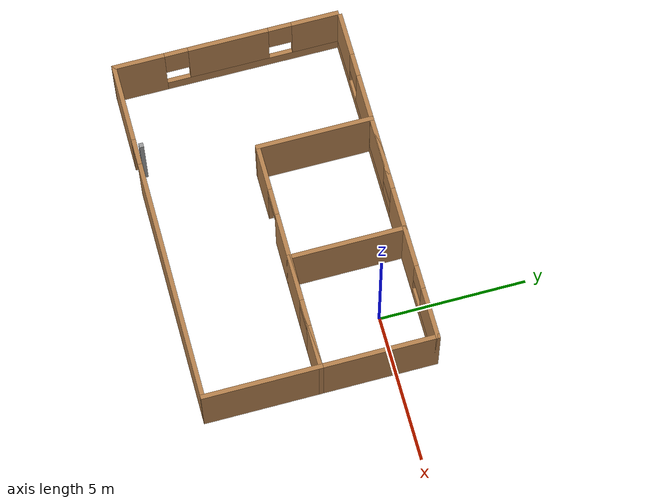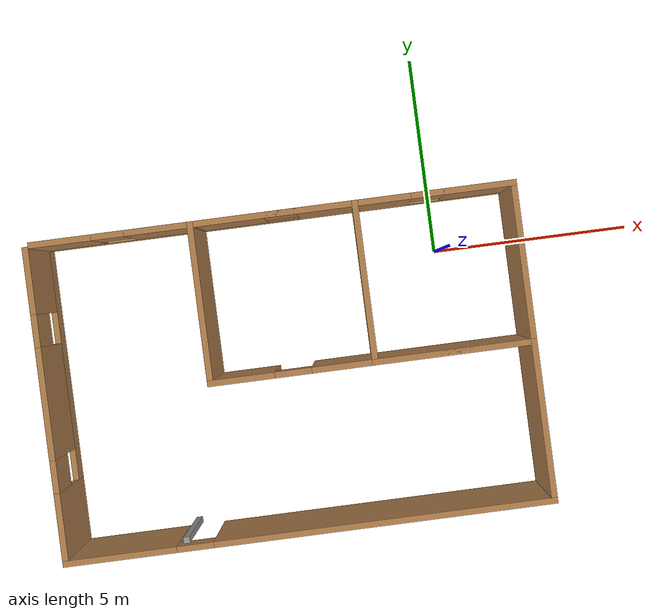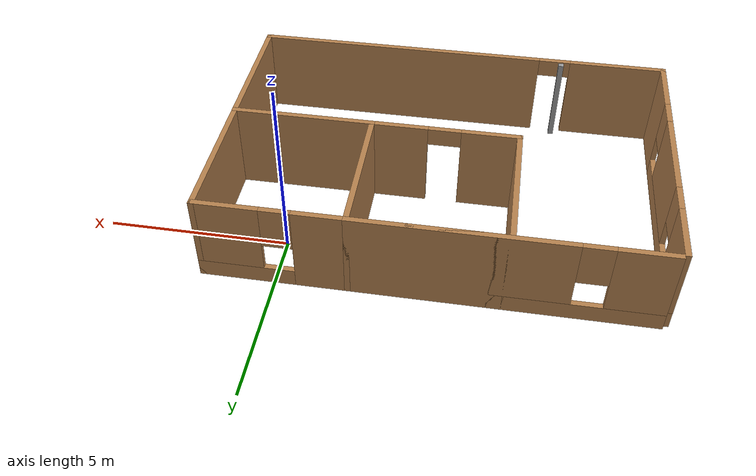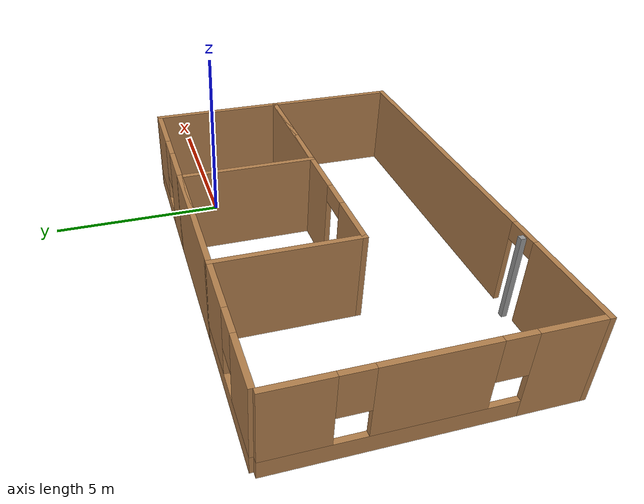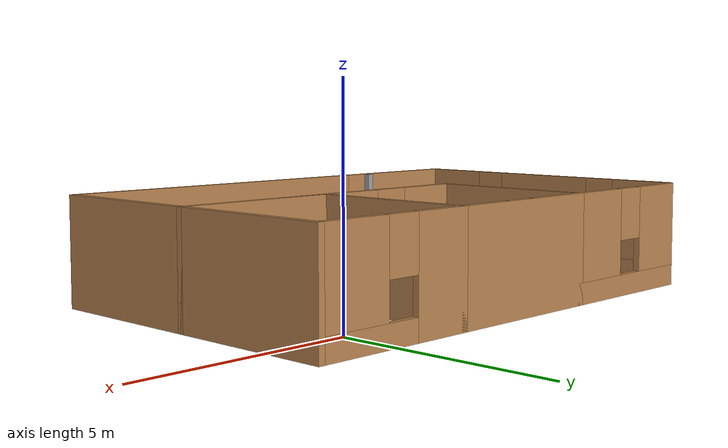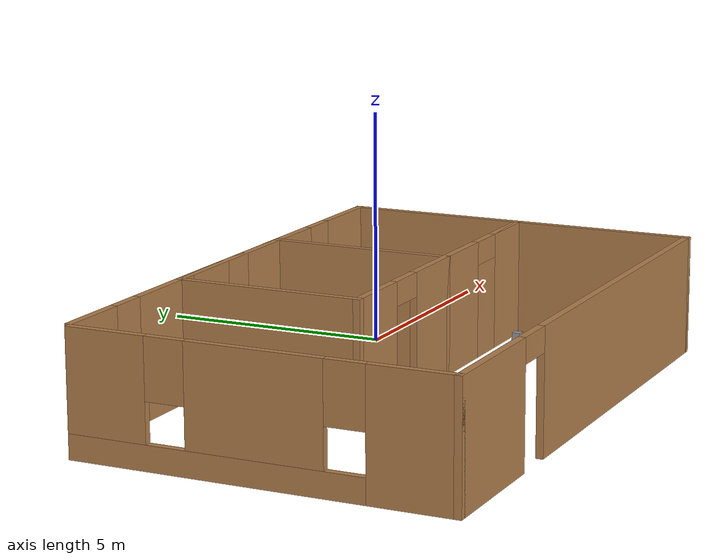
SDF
<?xml version='1.0'?>
<sdf version='1.6'>
  <model name='model'>
    <pose frame=''>-3.99777 -2.49916 0 0 -0 0</pose>
    <link name='Wall_11'>
      <pose frame=''>0 -3.85 0 0 -0 0</pose>
      <visual name='Wall_11_Visual_0'>
        <pose frame=''>-4.61809 0 1.25 0 -0 0</pose>
        <geometry>
          <box>
            <size>2.76382 0.15 2.5</size>
          </box>
        </geometry>
        <material>
          <script>
            <uri>file://media/materials/scripts/gazebo.material</uri>
            <name>Gazebo/Wood</name>
          </script>
          <ambient>1 1 1 1</ambient>
        </material>
        <meta>
          <layer>0</layer>
        </meta>
      </visual>
      <collision name='Wall_11_Collision_0'>
        <geometry>
          <box>
            <size>2.76382 0.15 2.5</size>
          </box>
        </geometry>
        <pose frame=''>-4.61809 0 1.25 0 -0 0</pose>
      </collision>
      <visual name='Wall_11_Visual_1'>
        <pose frame=''>1.83191 0 1.25 0 -0 0</pose>
        <geometry>
          <box>
            <size>8.33618 0.15 2.5</size>
          </box>
        </geometry>
        <material>
          <script>
            <uri>file://media/materials/scripts/gazebo.material</uri>
            <name>Gazebo/Wood</name>
          </script>
          <ambient>1 1 1 1</ambient>
        </material>
        <meta>
          <layer>0</layer>
        </meta>
      </visual>
      <collision name='Wall_11_Collision_1'>
        <geometry>
          <box>
            <size>8.33618 0.15 2.5</size>
          </box>
        </geometry>
        <pose frame=''>1.83191 0 1.25 0 -0 0</pose>
      </collision>
      <visual name='Wall_11_Visual_2'>
        <pose frame=''>-2.78618 0 2.25 0 -0 0</pose>
        <geometry>
          <box>
            <size>0.9 0.15 0.5</size>
          </box>
        </geometry>
        <material>
          <script>
            <uri>file://media/materials/scripts/gazebo.material</uri>
            <name>Gazebo/Wood</name>
          </script>
          <ambient>1 1 1 1</ambient>
        </material>
        <meta>
          <layer>0</layer>
        </meta>
      </visual>
      <collision name='Wall_11_Collision_2'>
        <geometry>
          <box>
            <size>0.9 0.15 0.5</size>
          </box>
        </geometry>
        <pose frame=''>-2.78618 0 2.25 0 -0 0</pose>
      </collision>
    </link>
    <link name='Wall_12'>
      <collision name='Wall_12_Collision'>
        <geometry>
          <box>
            <size>4 0.15 2.5</size>
          </box>
        </geometry>
        <pose frame=''>0 0 1.25 0 -0 0</pose>
      </collision>
      <visual name='Wall_12_Visual'>
        <pose frame=''>0 0 1.25 0 -0 0</pose>
        <geometry>
          <box>
            <size>4 0.15 2.5</size>
          </box>
        </geometry>
        <material>
          <script>
            <uri>file://media/materials/scripts/gazebo.material</uri>
            <name>Gazebo/Wood</name>
          </script>
          <ambient>1 1 1 1</ambient>
        </material>
        <meta>
          <layer>0</layer>
        </meta>
      </visual>
      <pose frame=''>5.925 -1.925 0 0 -0 1.5708</pose>
    </link>
    <link name='Wall_13'>
      <collision name='Wall_13_Collision'>
        <geometry>
          <box>
            <size>4 0.15 2.5</size>
          </box>
        </geometry>
        <pose frame=''>0 0 1.25 0 -0 0</pose>
      </collision>
      <visual name='Wall_13_Visual'>
        <pose frame=''>0 0 1.25 0 -0 0</pose>
        <geometry>
          <box>
            <size>4 0.15 2.5</size>
          </box>
        </geometry>
        <material>
          <script>
            <uri>file://media/materials/scripts/gazebo.material</uri>
            <name>Gazebo/Wood</name>
          </script>
          <ambient>1 1 1 1</ambient>
        </material>
        <meta>
          <layer>0</layer>
        </meta>
      </visual>
      <pose frame=''>4 0 0 0 -0 3.14159</pose>
    </link>
    <link name='Wall_14'>
      <collision name='Wall_14_Collision'>
        <geometry>
          <box>
            <size>4 0.15 2.5</size>
          </box>
        </geometry>
        <pose frame=''>0 0 1.25 0 -0 0</pose>
      </collision>
      <visual name='Wall_14_Visual'>
        <pose frame=''>0 0 1.25 0 -0 0</pose>
        <geometry>
          <box>
            <size>4 0.15 2.5</size>
          </box>
        </geometry>
        <material>
          <script>
            <uri>file://media/materials/scripts/gazebo.material</uri>
            <name>Gazebo/Wood</name>
          </script>
          <ambient>1 1 1 1</ambient>
        </material>
        <meta>
          <layer>0</layer>
        </meta>
      </visual>
      <pose frame=''>2.075 1.925 0 0 -0 1.5708</pose>
    </link>
    <link name='Wall_15'>
      <pose frame=''>4 3.85 0 0 -0 0</pose>
      <visual name='Wall_15_Visual_0'>
        <pose frame=''>-1.28136 0 1.25 0 -0 0</pose>
        <geometry>
          <box>
            <size>1.43727 0.15 2.5</size>
          </box>
        </geometry>
        <material>
          <script>
            <uri>file://media/materials/scripts/gazebo.material</uri>
            <name>Gazebo/Wood</name>
          </script>
          <ambient>1 1 1 1</ambient>
        </material>
        <meta>
          <layer>0</layer>
        </meta>
      </visual>
      <collision name='Wall_15_Collision_0'>
        <geometry>
          <box>
            <size>1.43727 0.15 2.5</size>
          </box>
        </geometry>
        <pose frame=''>-1.28136 0 1.25 0 -0 0</pose>
      </collision>
      <visual name='Wall_15_Visual_1'>
        <pose frame=''>0.718636 0 0.25 0 -0 0</pose>
        <geometry>
          <box>
            <size>2.56273 0.15 0.5</size>
          </box>
        </geometry>
        <material>
          <script>
            <uri>file://media/materials/scripts/gazebo.material</uri>
            <name>Gazebo/Wood</name>
          </script>
          <ambient>1 1 1 1</ambient>
        </material>
        <meta>
          <layer>0</layer>
        </meta>
      </visual>
      <collision name='Wall_15_Collision_1'>
        <geometry>
          <box>
            <size>2.56273 0.15 0.5</size>
          </box>
        </geometry>
        <pose frame=''>0.718636 0 0.25 0 -0 0</pose>
      </collision>
      <visual name='Wall_15_Visual_2'>
        <pose frame=''>1.11864 0 1.5 0 -0 0</pose>
        <geometry>
          <box>
            <size>1.76273 0.15 2</size>
          </box>
        </geometry>
        <material>
          <script>
            <uri>file://media/materials/scripts/gazebo.material</uri>
            <name>Gazebo/Wood</name>
          </script>
          <ambient>1 1 1 1</ambient>
        </material>
        <meta>
          <layer>0</layer>
        </meta>
      </visual>
      <collision name='Wall_15_Collision_2'>
        <geometry>
          <box>
            <size>1.76273 0.15 2</size>
          </box>
        </geometry>
        <pose frame=''>1.11864 0 1.5 0 -0 0</pose>
      </collision>
      <visual name='Wall_15_Visual_3'>
        <pose frame=''>-0.162727 0 1.9 0 -0 0</pose>
        <geometry>
          <box>
            <size>0.8 0.15 1.2</size>
          </box>
        </geometry>
        <material>
          <script>
            <uri>file://media/materials/scripts/gazebo.material</uri>
            <name>Gazebo/Wood</name>
          </script>
          <ambient>1 1 1 1</ambient>
        </material>
        <meta>
          <layer>0</layer>
        </meta>
      </visual>
      <collision name='Wall_15_Collision_3'>
        <geometry>
          <box>
            <size>0.8 0.15 1.2</size>
          </box>
        </geometry>
        <pose frame=''>-0.162727 0 1.9 0 -0 0</pose>
      </collision>
    </link>
    <link name='Wall_16'>
      <collision name='Wall_16_Collision'>
        <geometry>
          <box>
            <size>4 0.15 2.5</size>
          </box>
        </geometry>
        <pose frame=''>0 0 1.25 0 -0 0</pose>
      </collision>
      <visual name='Wall_16_Visual'>
        <pose frame=''>0 0 1.25 0 -0 0</pose>
        <geometry>
          <box>
            <size>4 0.15 2.5</size>
          </box>
        </geometry>
        <material>
          <script>
            <uri>file://media/materials/scripts/gazebo.material</uri>
            <name>Gazebo/Wood</name>
          </script>
          <ambient>1 1 1 1</ambient>
        </material>
        <meta>
          <layer>0</layer>
        </meta>
      </visual>
      <pose frame=''>5.925 1.925 0 0 0 -1.5708</pose>
    </link>
    <link name='Wall_17'>
      <pose frame=''>2 0 0 0 -0 3.14159</pose>
      <visual name='Wall_17_Visual_0'>
        <pose frame=''>-3.25004 0 1.25 0 -0 0</pose>
        <geometry>
          <box>
            <size>1.49992 0.15 2.5</size>
          </box>
        </geometry>
        <material>
          <script>
            <uri>file://media/materials/scripts/gazebo.material</uri>
            <name>Gazebo/Wood</name>
          </script>
          <ambient>1 1 1 1</ambient>
        </material>
        <meta>
          <layer>0</layer>
        </meta>
      </visual>
      <collision name='Wall_17_Collision_0'>
        <geometry>
          <box>
            <size>1.49992 0.15 2.5</size>
          </box>
        </geometry>
        <pose frame=''>-3.25004 0 1.25 0 -0 0</pose>
      </collision>
      <visual name='Wall_17_Visual_1'>
        <pose frame=''>-0.06836 0 1.25 0 -0 0</pose>
        <geometry>
          <box>
            <size>3.06343 0.15 2.5</size>
          </box>
        </geometry>
        <material>
          <script>
            <uri>file://media/materials/scripts/gazebo.material</uri>
            <name>Gazebo/Wood</name>
          </script>
          <ambient>1 1 1 1</ambient>
        </material>
        <meta>
          <layer>0</layer>
        </meta>
      </visual>
      <collision name='Wall_17_Collision_1'>
        <geometry>
          <box>
            <size>3.06343 0.15 2.5</size>
          </box>
        </geometry>
        <pose frame=''>-0.06836 0 1.25 0 -0 0</pose>
      </collision>
      <visual name='Wall_17_Visual_2'>
        <pose frame=''>3.18168 0 1.25 0 -0 0</pose>
        <geometry>
          <box>
            <size>1.63664 0.15 2.5</size>
          </box>
        </geometry>
        <material>
          <script>
            <uri>file://media/materials/scripts/gazebo.material</uri>
            <name>Gazebo/Wood</name>
          </script>
          <ambient>1 1 1 1</ambient>
        </material>
        <meta>
          <layer>0</layer>
        </meta>
      </visual>
      <collision name='Wall_17_Collision_2'>
        <geometry>
          <box>
            <size>1.63664 0.15 2.5</size>
          </box>
        </geometry>
        <pose frame=''>3.18168 0 1.25 0 -0 0</pose>
      </collision>
      <visual name='Wall_17_Visual_3'>
        <pose frame=''>-2.05008 0 2.25 0 -0 0</pose>
        <geometry>
          <box>
            <size>0.9 0.15 0.5</size>
          </box>
        </geometry>
        <material>
          <script>
            <uri>file://media/materials/scripts/gazebo.material</uri>
            <name>Gazebo/Wood</name>
          </script>
          <ambient>1 1 1 1</ambient>
        </material>
        <meta>
          <layer>0</layer>
        </meta>
      </visual>
      <collision name='Wall_17_Collision_3'>
        <geometry>
          <box>
            <size>0.9 0.15 0.5</size>
          </box>
        </geometry>
        <pose frame=''>-2.05008 0 2.25 0 -0 0</pose>
      </collision>
      <visual name='Wall_17_Visual_4'>
        <pose frame=''>1.91335 0 2.25 0 -0 0</pose>
        <geometry>
          <box>
            <size>0.9 0.15 0.5</size>
          </box>
        </geometry>
        <material>
          <script>
            <uri>file://media/materials/scripts/gazebo.material</uri>
            <name>Gazebo/Wood</name>
          </script>
          <ambient>1 1 1 1</ambient>
        </material>
        <meta>
          <layer>0</layer>
        </meta>
      </visual>
      <collision name='Wall_17_Collision_4'>
        <geometry>
          <box>
            <size>0.9 0.15 0.5</size>
          </box>
        </geometry>
        <pose frame=''>1.91335 0 2.25 0 -0 0</pose>
      </collision>
    </link>
    <link name='Wall_18'>
      <collision name='Wall_18_Collision'>
        <geometry>
          <box>
            <size>4 0.15 2.5</size>
          </box>
        </geometry>
        <pose frame=''>0 0 1.25 0 -0 0</pose>
      </collision>
      <visual name='Wall_18_Visual'>
        <pose frame=''>0 0 1.25 0 -0 0</pose>
        <geometry>
          <box>
            <size>4 0.15 2.5</size>
          </box>
        </geometry>
        <material>
          <script>
            <uri>file://media/materials/scripts/gazebo.material</uri>
            <name>Gazebo/Wood</name>
          </script>
          <ambient>1 1 1 1</ambient>
        </material>
        <meta>
          <layer>0</layer>
        </meta>
      </visual>
      <pose frame=''>-1.925 1.925 0 0 -0 1.5708</pose>
    </link>
    <link name='Wall_19'>
      <collision name='Wall_19_Collision'>
        <geometry>
          <box>
            <size>4.15 0.15 2.5</size>
          </box>
        </geometry>
        <pose frame=''>0 0 1.25 0 -0 0</pose>
      </collision>
      <visual name='Wall_19_Visual'>
        <pose frame=''>0 0 1.25 0 -0 0</pose>
        <geometry>
          <box>
            <size>4.15 0.15 2.5</size>
          </box>
        </geometry>
        <material>
          <script>
            <uri>file://media/materials/scripts/gazebo.material</uri>
            <name>Gazebo/Wood</name>
          </script>
          <ambient>1 1 1 1</ambient>
        </material>
        <meta>
          <layer>0</layer>
        </meta>
      </visual>
      <pose frame=''>0.075 3.85 0 0 -0 0</pose>
    </link>
    <link name='Wall_20'>
      <pose frame=''>-1.85 3.85 0 0 -0 3.14159</pose>
      <visual name='Wall_20_Visual_0'>
        <pose frame=''>-3.24812 0 1.25 0 -0 0</pose>
        <geometry>
          <box>
            <size>1.50375 0.15 2.5</size>
          </box>
        </geometry>
        <material>
          <script>
            <uri>file://media/materials/scripts/gazebo.material</uri>
            <name>Gazebo/Wood</name>
          </script>
          <ambient>1 1 1 1</ambient>
        </material>
        <meta>
          <layer>0</layer>
        </meta>
      </visual>
      <collision name='Wall_20_Collision_0'>
        <geometry>
          <box>
            <size>1.50375 0.15 2.5</size>
          </box>
        </geometry>
        <pose frame=''>-3.24812 0 1.25 0 -0 0</pose>
      </collision>
      <visual name='Wall_20_Visual_1'>
        <pose frame=''>0.751877 0 0.25 0 -0 0</pose>
        <geometry>
          <box>
            <size>6.49625 0.15 0.5</size>
          </box>
        </geometry>
        <material>
          <script>
            <uri>file://media/materials/scripts/gazebo.material</uri>
            <name>Gazebo/Wood</name>
          </script>
          <ambient>1 1 1 1</ambient>
        </material>
        <meta>
          <layer>0</layer>
        </meta>
      </visual>
      <collision name='Wall_20_Collision_1'>
        <geometry>
          <box>
            <size>6.49625 0.15 0.5</size>
          </box>
        </geometry>
        <pose frame=''>0.751877 0 0.25 0 -0 0</pose>
      </collision>
      <visual name='Wall_20_Visual_2'>
        <pose frame=''>-0.008131 0 1.5 0 -0 0</pose>
        <geometry>
          <box>
            <size>3.37623 0.15 2</size>
          </box>
        </geometry>
        <material>
          <script>
            <uri>file://media/materials/scripts/gazebo.material</uri>
            <name>Gazebo/Wood</name>
          </script>
          <ambient>1 1 1 1</ambient>
        </material>
        <meta>
          <layer>0</layer>
        </meta>
      </visual>
      <collision name='Wall_20_Collision_2'>
        <geometry>
          <box>
            <size>3.37623 0.15 2</size>
          </box>
        </geometry>
        <pose frame=''>-0.008131 0 1.5 0 -0 0</pose>
      </collision>
      <visual name='Wall_20_Visual_3'>
        <pose frame=''>3.23999 0 1.5 0 -0 0</pose>
        <geometry>
          <box>
            <size>1.52001 0.15 2</size>
          </box>
        </geometry>
        <material>
          <script>
            <uri>file://media/materials/scripts/gazebo.material</uri>
            <name>Gazebo/Wood</name>
          </script>
          <ambient>1 1 1 1</ambient>
        </material>
        <meta>
          <layer>0</layer>
        </meta>
      </visual>
      <collision name='Wall_20_Collision_3'>
        <geometry>
          <box>
            <size>1.52001 0.15 2</size>
          </box>
        </geometry>
        <pose frame=''>3.23999 0 1.5 0 -0 0</pose>
      </collision>
      <visual name='Wall_20_Visual_4'>
        <pose frame=''>-2.09625 0 1.9 0 -0 0</pose>
        <geometry>
          <box>
            <size>0.8 0.15 1.2</size>
          </box>
        </geometry>
        <material>
          <script>
            <uri>file://media/materials/scripts/gazebo.material</uri>
            <name>Gazebo/Wood</name>
          </script>
          <ambient>1 1 1 1</ambient>
        </material>
        <meta>
          <layer>0</layer>
        </meta>
      </visual>
      <collision name='Wall_20_Collision_4'>
        <geometry>
          <box>
            <size>0.8 0.15 1.2</size>
          </box>
        </geometry>
        <pose frame=''>-2.09625 0 1.9 0 -0 0</pose>
      </collision>
      <visual name='Wall_20_Visual_5'>
        <pose frame=''>2.07999 0 1.9 0 -0 0</pose>
        <geometry>
          <box>
            <size>0.8 0.15 1.2</size>
          </box>
        </geometry>
        <material>
          <script>
            <uri>file://media/materials/scripts/gazebo.material</uri>
            <name>Gazebo/Wood</name>
          </script>
          <ambient>1 1 1 1</ambient>
        </material>
        <meta>
          <layer>0</layer>
        </meta>
      </visual>
      <collision name='Wall_20_Collision_5'>
        <geometry>
          <box>
            <size>0.8 0.15 1.2</size>
          </box>
        </geometry>
        <pose frame=''>2.07999 0 1.9 0 -0 0</pose>
      </collision>
    </link>
    <link name='Wall_23'>
      <pose frame=''>-5.925 -0.05 0 0 -0 1.5708</pose>
      <visual name='Wall_23_Visual_0'>
        <pose frame=''>-2.98532 0 1.25 0 -0 0</pose>
        <geometry>
          <box>
            <size>1.77936 0.15 2.5</size>
          </box>
        </geometry>
        <material>
          <script>
            <uri>file://media/materials/scripts/gazebo.material</uri>
            <name>Gazebo/Wood</name>
          </script>
          <ambient>1 1 1 1</ambient>
        </material>
        <meta>
          <layer>0</layer>
        </meta>
      </visual>
      <collision name='Wall_23_Collision_0'>
        <geometry>
          <box>
            <size>1.77936 0.15 2.5</size>
          </box>
        </geometry>
        <pose frame=''>-2.98532 0 1.25 0 -0 0</pose>
      </collision>
      <visual name='Wall_23_Visual_1'>
        <pose frame=''>0.889679 0 0.25 0 -0 0</pose>
        <geometry>
          <box>
            <size>5.97064 0.15 0.5</size>
          </box>
        </geometry>
        <material>
          <script>
            <uri>file://media/materials/scripts/gazebo.material</uri>
            <name>Gazebo/Wood</name>
          </script>
          <ambient>1 1 1 1</ambient>
        </material>
        <meta>
          <layer>0</layer>
        </meta>
      </visual>
      <collision name='Wall_23_Collision_1'>
        <geometry>
          <box>
            <size>5.97064 0.15 0.5</size>
          </box>
        </geometry>
        <pose frame=''>0.889679 0 0.25 0 -0 0</pose>
      </collision>
      <visual name='Wall_23_Visual_2'>
        <pose frame=''>0.07327 0 1.5 0 -0 0</pose>
        <geometry>
          <box>
            <size>2.73783 0.15 2</size>
          </box>
        </geometry>
        <material>
          <script>
            <uri>file://media/materials/scripts/gazebo.material</uri>
            <name>Gazebo/Wood</name>
          </script>
          <ambient>1 1 1 1</ambient>
        </material>
        <meta>
          <layer>0</layer>
        </meta>
      </visual>
      <collision name='Wall_23_Collision_2'>
        <geometry>
          <box>
            <size>2.73783 0.15 2</size>
          </box>
        </geometry>
        <pose frame=''>0.07327 0 1.5 0 -0 0</pose>
      </collision>
      <visual name='Wall_23_Visual_3'>
        <pose frame=''>3.05859 0 1.5 0 -0 0</pose>
        <geometry>
          <box>
            <size>1.63282 0.15 2</size>
          </box>
        </geometry>
        <material>
          <script>
            <uri>file://media/materials/scripts/gazebo.material</uri>
            <name>Gazebo/Wood</name>
          </script>
          <ambient>1 1 1 1</ambient>
        </material>
        <meta>
          <layer>0</layer>
        </meta>
      </visual>
      <collision name='Wall_23_Collision_3'>
        <geometry>
          <box>
            <size>1.63282 0.15 2</size>
          </box>
        </geometry>
        <pose frame=''>3.05859 0 1.5 0 -0 0</pose>
      </collision>
      <visual name='Wall_23_Visual_4'>
        <pose frame=''>-1.69564 0 1.9 0 -0 0</pose>
        <geometry>
          <box>
            <size>0.8 0.15 1.2</size>
          </box>
        </geometry>
        <material>
          <script>
            <uri>file://media/materials/scripts/gazebo.material</uri>
            <name>Gazebo/Wood</name>
          </script>
          <ambient>1 1 1 1</ambient>
        </material>
        <meta>
          <layer>0</layer>
        </meta>
      </visual>
      <collision name='Wall_23_Collision_4'>
        <geometry>
          <box>
            <size>0.8 0.15 1.2</size>
          </box>
        </geometry>
        <pose frame=''>-1.69564 0 1.9 0 -0 0</pose>
      </collision>
      <visual name='Wall_23_Visual_5'>
        <pose frame=''>1.84218 0 1.9 0 -0 0</pose>
        <geometry>
          <box>
            <size>0.8 0.15 1.2</size>
          </box>
        </geometry>
        <material>
          <script>
            <uri>file://media/materials/scripts/gazebo.material</uri>
            <name>Gazebo/Wood</name>
          </script>
          <ambient>1 1 1 1</ambient>
        </material>
        <meta>
          <layer>0</layer>
        </meta>
      </visual>
      <collision name='Wall_23_Collision_5'>
        <geometry>
          <box>
            <size>0.8 0.15 1.2</size>
          </box>
        </geometry>
        <pose frame=''>1.84218 0 1.9 0 -0 0</pose>
      </collision>
    </link>
    <link name='Wall_8'>
      <collision name='Wall_8_Collision'>
        <geometry>
          <box>
            <size>0.15 0.15 2.5</size>
          </box>
        </geometry>
        <pose frame=''>0 0 1.25 0 -0 0</pose>
      </collision>
      <visual name='Wall_8_Visual'>
        <pose frame=''>0 0 1.25 0 -0 0</pose>
        <geometry>
          <box>
            <size>0.15 0.15 2.5</size>
          </box>
        </geometry>
        <material>
          <script>
            <uri>file://media/materials/scripts/gazebo.material</uri>
            <name>Gazebo/Grey</name>
          </script>
          <ambient>1 1 1 1</ambient>
        </material>
        <meta>
          <layer>0</layer>
        </meta>
      </visual>
      <pose frame=''>-2.97238 -3.6532 0 0 -0 0</pose>
    </link>
    <static>1</static>
  </model>
</sdf>
